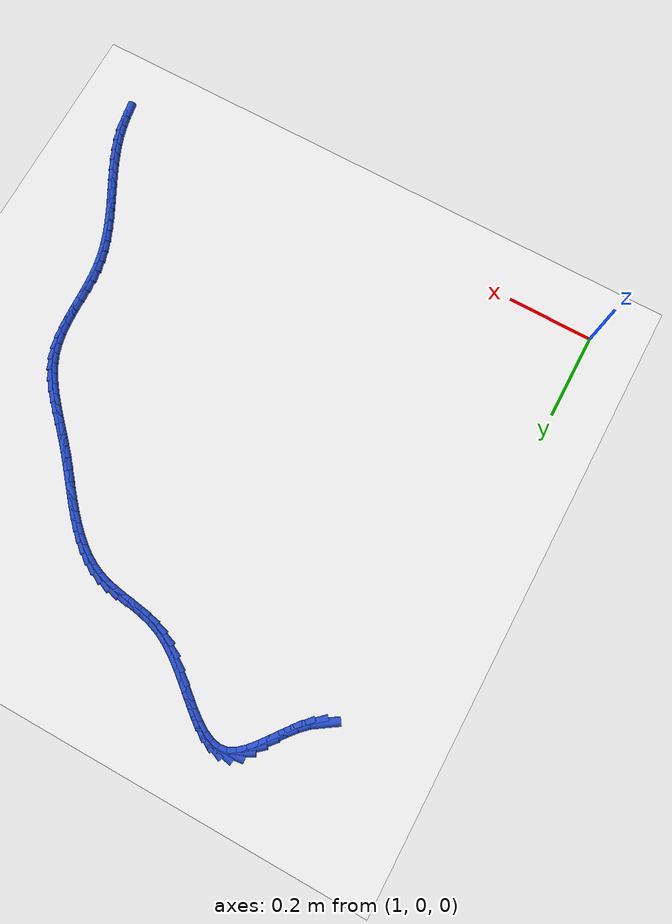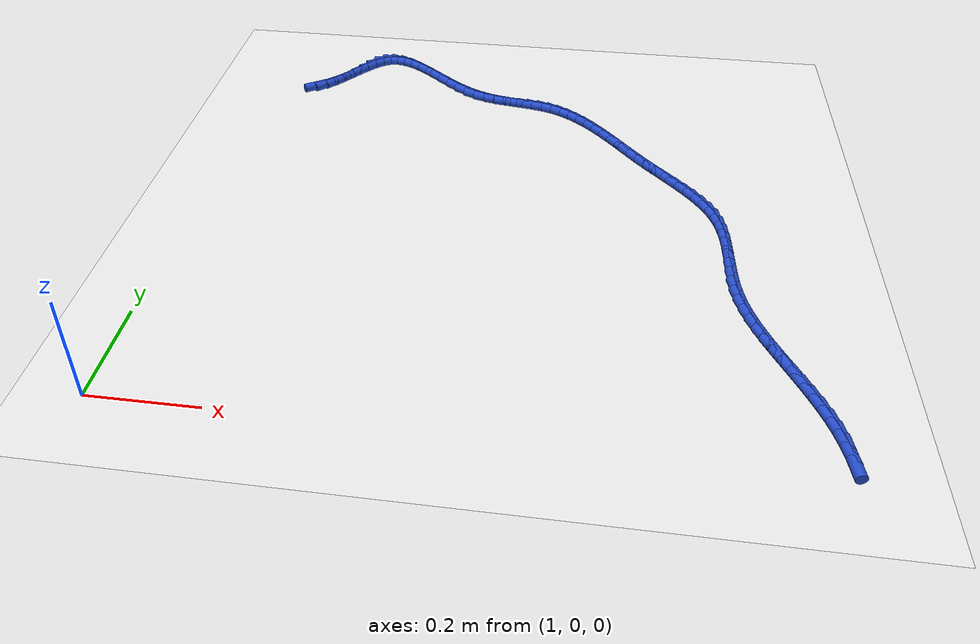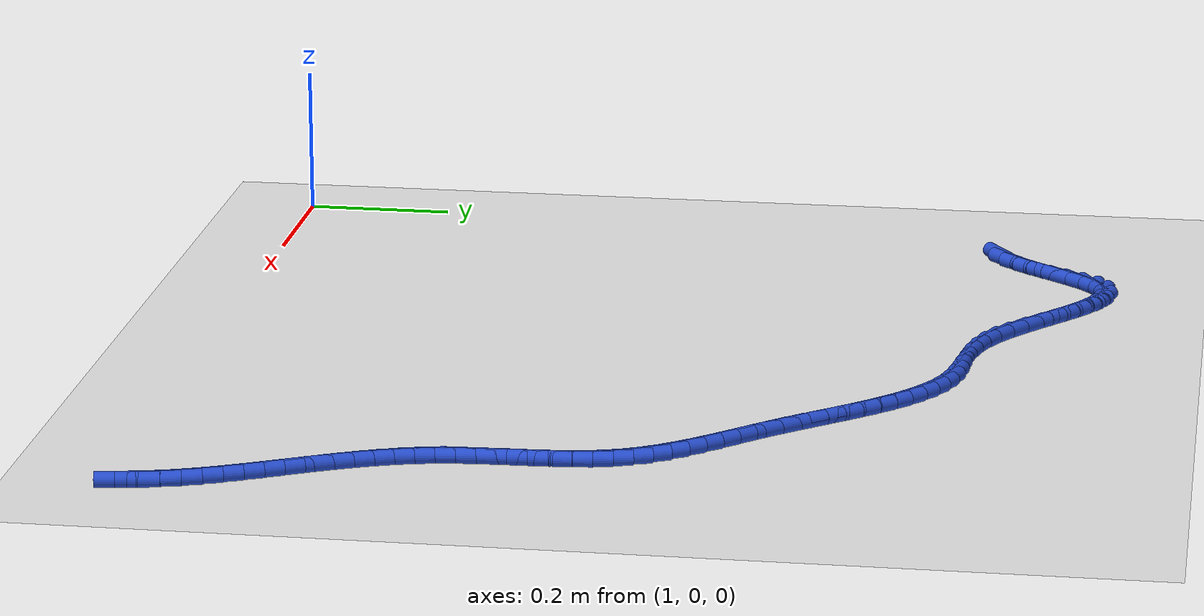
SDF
<sdf version="1.6">
 <world name="default">
  <model name="ground_plane">
   <static>1</static>
   <link name="link">
    <collision name="collision">
     <geometry><plane><normal>0 0 1</normal><size>100 100</size></plane></geometry>
     <surface><friction><ode><mu>100</mu><mu2>50</mu2></ode></friction></surface>
    </collision>
    <visual name="visual">
     <cast_shadows>0</cast_shadows>
     <geometry><plane><normal>0 0 1</normal><size>100 100</size></plane></geometry>
     <material>
      <script><uri>file://media/materials/scripts/gazebo.material</uri><name>Gazebo/WhiteGlow</name></script>
     </material>
    </visual>
   </link>
  </model>
  <model name="line">
   <link name="link_71">
    <pose>1.137002148626677 1.0160487825676845 0.01 0 1.57 0.5913728985003605</pose>
    <collision name="collision">
     <geometry><cylinder><radius>0.01</radius><length>0.08</length></cylinder></geometry>
    </collision>
    <visual name="visual">
     <material>
      <script><name>Gazebo/Blue</name><uri>file://media/materials/scripts/gazebo.material</uri></script>
     </material>
     <geometry><cylinder><radius>0.01</radius><length>0.08</length></cylinder></geometry>
    </visual>
   </link>
   <link name="link_72">
    <pose>1.1565941167604836 1.0292056874970004 0.01 0 1.57 0.7714647295257325</pose>
    <collision name="collision">
     <geometry><cylinder><radius>0.01</radius><length>0.08</length></cylinder></geometry>
    </collision>
    <visual name="visual">
     <material>
      <script><name>Gazebo/Blue</name><uri>file://media/materials/scripts/gazebo.material</uri></script>
     </material>
     <geometry><cylinder><radius>0.01</radius><length>0.08</length></cylinder></geometry>
    </visual>
   </link>
   <link name="link_73">
    <pose>1.175164277795667 1.047265435091484 0.01 0 1.57 0.8710166556853384</pose>
    <collision name="collision">
     <geometry><cylinder><radius>0.01</radius><length>0.08</length></cylinder></geometry>
    </collision>
    <visual name="visual">
     <material>
      <script><name>Gazebo/Blue</name><uri>file://media/materials/scripts/gazebo.material</uri></script>
     </material>
     <geometry><cylinder><radius>0.01</radius><length>0.08</length></cylinder></geometry>
    </visual>
   </link>
   <link name="link_74">
    <pose>1.1929773649842972 1.068423336660694 0.01 0 1.57 0.9136900970543028</pose>
    <collision name="collision">
     <geometry><cylinder><radius>0.01</radius><length>0.08</length></cylinder></geometry>
    </collision>
    <visual name="visual">
     <material>
      <script><name>Gazebo/Blue</name><uri>file://media/materials/scripts/gazebo.material</uri></script>
     </material>
     <geometry><cylinder><radius>0.01</radius><length>0.08</length></cylinder></geometry>
    </visual>
   </link>
   <link name="link_75">
    <pose>1.2102981115784477 1.09087470351419 0.01 0 1.57 0.9089419365113233</pose>
    <collision name="collision">
     <geometry><cylinder><radius>0.01</radius><length>0.08</length></cylinder></geometry>
    </collision>
    <visual name="visual">
     <material>
      <script><name>Gazebo/Blue</name><uri>file://media/materials/scripts/gazebo.material</uri></script>
     </material>
     <geometry><cylinder><radius>0.01</radius><length>0.08</length></cylinder></geometry>
    </visual>
   </link>
   <link name="link_76">
    <pose>1.2273912508301894 1.1128148469615307 0.01 0 1.57 0.8531490330658222</pose>
    <collision name="collision">
     <geometry><cylinder><radius>0.01</radius><length>0.08</length></cylinder></geometry>
    </collision>
    <visual name="visual">
     <material>
      <script><name>Gazebo/Blue</name><uri>file://media/materials/scripts/gazebo.material</uri></script>
     </material>
     <geometry><cylinder><radius>0.01</radius><length>0.08</length></cylinder></geometry>
    </visual>
   </link>
   <link name="link_77">
    <pose>1.2445215159915946 1.1324390783122757 0.01 0 1.57 0.7269117447156377</pose>
    <collision name="collision">
     <geometry><cylinder><radius>0.01</radius><length>0.08</length></cylinder></geometry>
    </collision>
    <visual name="visual">
     <material>
      <script><name>Gazebo/Blue</name><uri>file://media/materials/scripts/gazebo.material</uri></script>
     </material>
     <geometry><cylinder><radius>0.01</radius><length>0.08</length></cylinder></geometry>
    </visual>
   </link>
   <link name="link_78">
    <pose>1.261953640314735 1.1479427088759844 0.01 0 1.57 0.489170335091466</pose>
    <collision name="collision">
     <geometry><cylinder><radius>0.01</radius><length>0.08</length></cylinder></geometry>
    </collision>
    <visual name="visual">
     <material>
      <script><name>Gazebo/Blue</name><uri>file://media/materials/scripts/gazebo.material</uri></script>
     </material>
     <geometry><cylinder><radius>0.01</radius><length>0.08</length></cylinder></geometry>
    </visual>
   </link>
   <link name="link_79">
    <pose>1.279952081242337 1.1575236913404596 0.01 0 1.57 0.13872911382044562</pose>
    <collision name="collision">
     <geometry><cylinder><radius>0.01</radius><length>0.08</length></cylinder></geometry>
    </collision>
    <visual name="visual">
     <material>
      <script><name>Gazebo/Blue</name><uri>file://media/materials/scripts/gazebo.material</uri></script>
     </material>
     <geometry><cylinder><radius>0.01</radius><length>0.08</length></cylinder></geometry>
    </visual>
   </link>
   <link name="link_80">
    <pose>1.2987017650354922 1.160141634721758 0.01 0 1.57 -0.1813208368152568</pose>
    <collision name="collision">
     <geometry><cylinder><radius>0.01</radius><length>0.08</length></cylinder></geometry>
    </collision>
    <visual name="visual">
     <material>
      <script><name>Gazebo/Blue</name><uri>file://media/materials/scripts/gazebo.material</uri></script>
     </material>
     <geometry><cylinder><radius>0.01</radius><length>0.08</length></cylinder></geometry>
    </visual>
   </link>
   <link name="link_81">
    <pose>1.3181985091532409 1.156567210223683 0.01 0 1.57 -0.40783194671714057</pose>
    <collision name="collision">
     <geometry><cylinder><radius>0.01</radius><length>0.08</length></cylinder></geometry>
    </collision>
    <visual name="visual">
     <material>
      <script><name>Gazebo/Blue</name><uri>file://media/materials/scripts/gazebo.material</uri></script>
     </material>
     <geometry><cylinder><radius>0.01</radius><length>0.08</length></cylinder></geometry>
    </visual>
   </link>
   <link name="link_82">
    <pose>1.338410632201323 1.1478344407972103 0.01 0 1.57 -0.5515898923646361</pose>
    <collision name="collision">
     <geometry><cylinder><radius>0.01</radius><length>0.08</length></cylinder></geometry>
    </collision>
    <visual name="visual">
     <material>
      <script><name>Gazebo/Blue</name><uri>file://media/materials/scripts/gazebo.material</uri></script>
     </material>
     <geometry><cylinder><radius>0.01</radius><length>0.08</length></cylinder></geometry>
    </visual>
   </link>
   <link name="link_83">
    <pose>1.3593064527854755 1.1349773493933133 0.01 0 1.57 -0.6371300389751188</pose>
    <collision name="collision">
     <geometry><cylinder><radius>0.01</radius><length>0.08</length></cylinder></geometry>
    </collision>
    <visual name="visual">
     <material>
      <script><name>Gazebo/Blue</name><uri>file://media/materials/scripts/gazebo.material</uri></script>
     </material>
     <geometry><cylinder><radius>0.01</radius><length>0.08</length></cylinder></geometry>
    </visual>
   </link>
   <link name="link_84">
    <pose>1.3808542895114364 1.1190299589629673 0.01 0 1.57 -0.6820998795930007</pose>
    <collision name="collision">
     <geometry><cylinder><radius>0.01</radius><length>0.08</length></cylinder></geometry>
    </collision>
    <visual name="visual">
     <material>
      <script><name>Gazebo/Blue</name><uri>file://media/materials/scripts/gazebo.material</uri></script>
     </material>
     <geometry><cylinder><radius>0.01</radius><length>0.08</length></cylinder></geometry>
    </visual>
   </link>
   <link name="link_85">
    <pose>1.4030224609849444 1.1010262924571457 0.01 0 1.57 -0.6963413860198712</pose>
    <collision name="collision">
     <geometry><cylinder><radius>0.01</radius><length>0.08</length></cylinder></geometry>
    </collision>
    <visual name="visual">
     <material>
      <script><name>Gazebo/Blue</name><uri>file://media/materials/scripts/gazebo.material</uri></script>
     </material>
     <geometry><cylinder><radius>0.01</radius><length>0.08</length></cylinder></geometry>
    </visual>
   </link>
   <link name="link_86">
    <pose>1.4257792858117375 1.082000372826823 0.01 0 1.57 -0.6841660044927991</pose>
    <collision name="collision">
     <geometry><cylinder><radius>0.01</radius><length>0.08</length></cylinder></geometry>
    </collision>
    <visual name="visual">
     <material>
      <script><name>Gazebo/Blue</name><uri>file://media/materials/scripts/gazebo.material</uri></script>
     </material>
     <geometry><cylinder><radius>0.01</radius><length>0.08</length></cylinder></geometry>
    </visual>
   </link>
   <link name="link_87">
    <pose>1.449093082597554 1.0629862230229736 0.01 0 1.57 -0.6458872938954713</pose>
    <collision name="collision">
     <geometry><cylinder><radius>0.01</radius><length>0.08</length></cylinder></geometry>
    </collision>
    <visual name="visual">
     <material>
      <script><name>Gazebo/Blue</name><uri>file://media/materials/scripts/gazebo.material</uri></script>
     </material>
     <geometry><cylinder><radius>0.01</radius><length>0.08</length></cylinder></geometry>
    </visual>
   </link>
   <link name="link_88">
    <pose>1.4729321699481317 1.045017865996572 0.01 0 1.57 -0.5784608506104372</pose>
    <collision name="collision">
     <geometry><cylinder><radius>0.01</radius><length>0.08</length></cylinder></geometry>
    </collision>
    <visual name="visual">
     <material>
      <script><name>Gazebo/Blue</name><uri>file://media/materials/scripts/gazebo.material</uri></script>
     </material>
     <geometry><cylinder><radius>0.01</radius><length>0.08</length></cylinder></geometry>
    </visual>
   </link>
   <link name="link_89">
    <pose>1.497264866469209 1.0291293246985926 0.01 0 1.57 -0.4758443204005628</pose>
    <collision name="collision">
     <geometry><cylinder><radius>0.01</radius><length>0.08</length></cylinder></geometry>
    </collision>
    <visual name="visual">
     <material>
      <script><name>Gazebo/Blue</name><uri>file://media/materials/scripts/gazebo.material</uri></script>
     </material>
     <geometry><cylinder><radius>0.01</radius><length>0.08</length></cylinder></geometry>
    </visual>
   </link>
   <link name="link_90">
    <pose>1.5220592031511089 1.0163518062760322 0.01 0 1.57 -0.3506851265806094</pose>
    <collision name="collision">
     <geometry><cylinder><radius>0.01</radius><length>0.08</length></cylinder></geometry>
    </collision>
    <visual name="visual">
     <material>
      <script><name>Gazebo/Blue</name><uri>file://media/materials/scripts/gazebo.material</uri></script>
     </material>
     <geometry><cylinder><radius>0.01</radius><length>0.08</length></cylinder></geometry>
    </visual>
   </link>
   <link name="link_91">
    <pose>1.547224941599173 1.0071460506555572 0.01 0 1.57 -0.24883078111123785</pose>
    <collision name="collision">
     <geometry><cylinder><radius>0.01</radius><length>0.08</length></cylinder></geometry>
    </collision>
    <visual name="visual">
     <material>
      <script><name>Gazebo/Blue</name><uri>file://media/materials/scripts/gazebo.material</uri></script>
     </material>
     <geometry><cylinder><radius>0.01</radius><length>0.08</length></cylinder></geometry>
    </visual>
   </link>
   <link name="link_92">
    <pose>1.5725431407054535 1.0007127762428112 0.01 0 1.57 -0.18140707153791136</pose>
    <collision name="collision">
     <geometry><cylinder><radius>0.01</radius><length>0.08</length></cylinder></geometry>
    </collision>
    <visual name="visual">
     <material>
      <script><name>Gazebo/Blue</name><uri>file://media/materials/scripts/gazebo.material</uri></script>
     </material>
     <geometry><cylinder><radius>0.01</radius><length>0.08</length></cylinder></geometry>
    </visual>
   </link>
   <link name="link_93">
    <pose>1.5977776453584158 0.9960841734114088 0.01 0 1.57 -0.15103026229388786</pose>
    <collision name="collision">
     <geometry><cylinder><radius>0.01</radius><length>0.08</length></cylinder></geometry>
    </collision>
    <visual name="visual">
     <material>
      <script><name>Gazebo/Blue</name><uri>file://media/materials/scripts/gazebo.material</uri></script>
     </material>
     <geometry><cylinder><radius>0.01</radius><length>0.08</length></cylinder></geometry>
    </visual>
   </link>
   <link name="link_94">
    <pose>1.6226923004465241 0.9922924325349637 0.01 0 1.57 -0.15966799688558586</pose>
    <collision name="collision">
     <geometry><cylinder><radius>0.01</radius><length>0.08</length></cylinder></geometry>
    </collision>
    <visual name="visual">
     <material>
      <script><name>Gazebo/Blue</name><uri>file://media/materials/scripts/gazebo.material</uri></script>
     </material>
     <geometry><cylinder><radius>0.01</radius><length>0.08</length></cylinder></geometry>
    </visual>
   </link>
   <link name="link_95">
    <pose>1.6470509508582432 0.9883697439870913 0.01 0 1.57 -0.20993612916218832</pose>
    <collision name="collision">
     <geometry><cylinder><radius>0.01</radius><length>0.08</length></cylinder></geometry>
    </collision>
    <visual name="visual">
     <material>
      <script><name>Gazebo/Blue</name><uri>file://media/materials/scripts/gazebo.material</uri></script>
     </material>
     <geometry><cylinder><radius>0.01</radius><length>0.08</length></cylinder></geometry>
    </visual>
   </link>
   <link name="link_96">
    <pose>1.6706174414820365 0.9833482981414052 0.01 0 1.57 -0.3044229538754298</pose>
    <collision name="collision">
     <geometry><cylinder><radius>0.01</radius><length>0.08</length></cylinder></geometry>
    </collision>
    <visual name="visual">
     <material>
      <script><name>Gazebo/Blue</name><uri>file://media/materials/scripts/gazebo.material</uri></script>
     </material>
     <geometry><cylinder><radius>0.01</radius><length>0.08</length></cylinder></geometry>
    </visual>
   </link>
   <link name="link_97">
    <pose>1.6931574690371498 0.9762664671165922 0.01 0 1.57 -0.4238414345881973</pose>
    <collision name="collision">
     <geometry><cylinder><radius>0.01</radius><length>0.08</length></cylinder></geometry>
    </collision>
    <visual name="visual">
     <material>
      <script><name>Gazebo/Blue</name><uri>file://media/materials/scripts/gazebo.material</uri></script>
     </material>
     <geometry><cylinder><radius>0.01</radius><length>0.08</length></cylinder></geometry>
    </visual>
   </link>
   <link name="link_98">
    <pose>1.7145694427645692 0.9666056413596813 0.01 0 1.57 -0.5326641164342392</pose>
    <collision name="collision">
     <geometry><cylinder><radius>0.01</radius><length>0.08</length></cylinder></geometry>
    </collision>
    <visual name="visual">
     <material>
      <script><name>Gazebo/Blue</name><uri>file://media/materials/scripts/gazebo.material</uri></script>
     </material>
     <geometry><cylinder><radius>0.01</radius><length>0.08</length></cylinder></geometry>
    </visual>
   </link>
   <link name="link_99">
    <pose>1.7349709649168643 0.9545789171153467 0.01 0 1.57 -0.6257067629695859</pose>
    <collision name="collision">
     <geometry><cylinder><radius>0.01</radius><length>0.08</length></cylinder></geometry>
    </collision>
    <visual name="visual">
     <material>
      <script><name>Gazebo/Blue</name><uri>file://media/materials/scripts/gazebo.material</uri></script>
     </material>
     <geometry><cylinder><radius>0.01</radius><length>0.08</length></cylinder></geometry>
    </visual>
   </link>
   <link name="link_100">
    <pose>1.7545001627403085 0.9404679067583172 0.01 0 1.57 -0.702573788124187</pose>
    <collision name="collision">
     <geometry><cylinder><radius>0.01</radius><length>0.08</length></cylinder></geometry>
    </collision>
    <visual name="visual">
     <material>
      <script><name>Gazebo/Blue</name><uri>file://media/materials/scripts/gazebo.material</uri></script>
     </material>
     <geometry><cylinder><radius>0.01</radius><length>0.08</length></cylinder></geometry>
    </visual>
   </link>
   <link name="link_101">
    <pose>1.7732951634811742 0.9245542226633215 0.01 0 1.57 -0.7639558536630183</pose>
    <collision name="collision">
     <geometry><cylinder><radius>0.01</radius><length>0.08</length></cylinder></geometry>
    </collision>
    <visual name="visual">
     <material>
      <script><name>Gazebo/Blue</name><uri>file://media/materials/scripts/gazebo.material</uri></script>
     </material>
     <geometry><cylinder><radius>0.01</radius><length>0.08</length></cylinder></geometry>
    </visual>
   </link>
   <link name="link_102">
    <pose>1.7914940943857336 0.907119477205088 0.01 0 1.57 -0.811019397514967</pose>
    <collision name="collision">
     <geometry><cylinder><radius>0.01</radius><length>0.08</length></cylinder></geometry>
    </collision>
    <visual name="visual">
     <material>
      <script><name>Gazebo/Blue</name><uri>file://media/materials/scripts/gazebo.material</uri></script>
     </material>
     <geometry><cylinder><radius>0.01</radius><length>0.08</length></cylinder></geometry>
    </visual>
   </link>
   <link name="link_103">
    <pose>1.80923508270026 0.8884452827583457 0.01 0 1.57 -0.8449946291841909</pose>
    <collision name="collision">
     <geometry><cylinder><radius>0.01</radius><length>0.08</length></cylinder></geometry>
    </collision>
    <visual name="visual">
     <material>
      <script><name>Gazebo/Blue</name><uri>file://media/materials/scripts/gazebo.material</uri></script>
     </material>
     <geometry><cylinder><radius>0.01</radius><length>0.08</length></cylinder></geometry>
    </visual>
   </link>
   <link name="link_104">
    <pose>1.826656255671026 0.8688132516978224 0.01 0 1.57 -0.8669467407259794</pose>
    <collision name="collision">
     <geometry><cylinder><radius>0.01</radius><length>0.08</length></cylinder></geometry>
    </collision>
    <visual name="visual">
     <material>
      <script><name>Gazebo/Blue</name><uri>file://media/materials/scripts/gazebo.material</uri></script>
     </material>
     <geometry><cylinder><radius>0.01</radius><length>0.08</length></cylinder></geometry>
    </visual>
   </link>
   <link name="link_105">
    <pose>1.8438957405443044 0.8485049963982481 0.01 0 1.57 -0.8776698323023392</pose>
    <collision name="collision">
     <geometry><cylinder><radius>0.01</radius><length>0.08</length></cylinder></geometry>
    </collision>
    <visual name="visual">
     <material>
      <script><name>Gazebo/Blue</name><uri>file://media/materials/scripts/gazebo.material</uri></script>
     </material>
     <geometry><cylinder><radius>0.01</radius><length>0.08</length></cylinder></geometry>
    </visual>
   </link>
   <link name="link_106">
    <pose>1.8610916645663678 0.8278021292343505 0.01 0 1.57 -0.8776496958210064</pose>
    <collision name="collision">
     <geometry><cylinder><radius>0.01</radius><length>0.08</length></cylinder></geometry>
    </collision>
    <visual name="visual">
     <material>
      <script><name>Gazebo/Blue</name><uri>file://media/materials/scripts/gazebo.material</uri></script>
     </material>
     <geometry><cylinder><radius>0.01</radius><length>0.08</length></cylinder></geometry>
    </visual>
   </link>
   <link name="link_107">
    <pose>1.878382154983489 0.8069862625808586 0.01 0 1.57 -0.8670614114376577</pose>
    <collision name="collision">
     <geometry><cylinder><radius>0.01</radius><length>0.08</length></cylinder></geometry>
    </collision>
    <visual name="visual">
     <material>
      <script><name>Gazebo/Blue</name><uri>file://media/materials/scripts/gazebo.material</uri></script>
     </material>
     <geometry><cylinder><radius>0.01</radius><length>0.08</length></cylinder></geometry>
    </visual>
   </link>
   <link name="link_108">
    <pose>1.8959053390419405 0.7863390088125006 0.01 0 1.57 -0.8462076487174274</pose>
    <collision name="collision">
     <geometry><cylinder><radius>0.01</radius><length>0.08</length></cylinder></geometry>
    </collision>
    <visual name="visual">
     <material>
      <script><name>Gazebo/Blue</name><uri>file://media/materials/scripts/gazebo.material</uri></script>
     </material>
     <geometry><cylinder><radius>0.01</radius><length>0.08</length></cylinder></geometry>
    </visual>
   </link>
   <link name="link_109">
    <pose>1.9137911228761029 0.766134089668669 0.01 0 1.57 -0.8265583350207791</pose>
    <collision name="collision">
     <geometry><cylinder><radius>0.01</radius><length>0.08</length></cylinder></geometry>
    </collision>
    <visual name="visual">
     <material>
      <script><name>Gazebo/Blue</name><uri>file://media/materials/scripts/gazebo.material</uri></script>
     </material>
     <geometry><cylinder><radius>0.01</radius><length>0.08</length></cylinder></geometry>
    </visual>
   </link>
   <link name="link_110">
    <pose>1.9319405387560882 0.7464255534158131 0.01 0 1.57 -0.8211715179133987</pose>
    <collision name="collision">
     <geometry><cylinder><radius>0.01</radius><length>0.08</length></cylinder></geometry>
    </collision>
    <visual name="visual">
     <material>
      <script><name>Gazebo/Blue</name><uri>file://media/materials/scripts/gazebo.material</uri></script>
     </material>
     <geometry><cylinder><radius>0.01</radius><length>0.08</length></cylinder></geometry>
    </visual>
   </link>
   <link name="link_111">
    <pose>1.9500011808414526 0.7270241980475695 0.01 0 1.57 -0.8311542694628763</pose>
    <collision name="collision">
     <geometry><cylinder><radius>0.01</radius><length>0.08</length></cylinder></geometry>
    </collision>
    <visual name="visual">
     <material>
      <script><name>Gazebo/Blue</name><uri>file://media/materials/scripts/gazebo.material</uri></script>
     </material>
     <geometry><cylinder><radius>0.01</radius><length>0.08</length></cylinder></geometry>
    </visual>
   </link>
   <link name="link_112">
    <pose>1.9676074933182222 0.7077282001935618 0.01 0 1.57 -0.857305934752279</pose>
    <collision name="collision">
     <geometry><cylinder><radius>0.01</radius><length>0.08</length></cylinder></geometry>
    </collision>
    <visual name="visual">
     <material>
      <script><name>Gazebo/Blue</name><uri>file://media/materials/scripts/gazebo.material</uri></script>
     </material>
     <geometry><cylinder><radius>0.01</radius><length>0.08</length></cylinder></geometry>
    </visual>
   </link>
   <link name="link_113">
    <pose>1.9843939203724241 0.6883357364834133 0.01 0 1.57 -0.9007681027601252</pose>
    <collision name="collision">
     <geometry><cylinder><radius>0.01</radius><length>0.08</length></cylinder></geometry>
    </collision>
    <visual name="visual">
     <material>
      <script><name>Gazebo/Blue</name><uri>file://media/materials/scripts/gazebo.material</uri></script>
     </material>
     <geometry><cylinder><radius>0.01</radius><length>0.08</length></cylinder></geometry>
    </visual>
   </link>
   <link name="link_114">
    <pose>1.999994906190085 0.6686449835467485 0.01 0 1.57 -0.962855191771858</pose>
    <collision name="collision">
     <geometry><cylinder><radius>0.01</radius><length>0.08</length></cylinder></geometry>
    </collision>
    <visual name="visual">
     <material>
      <script><name>Gazebo/Blue</name><uri>file://media/materials/scripts/gazebo.material</uri></script>
     </material>
     <geometry><cylinder><radius>0.01</radius><length>0.08</length></cylinder></geometry>
    </visual>
   </link>
   <link name="link_115">
    <pose>2.014044894957232 0.6484541180131908 0.01 0 1.57 -1.0446536029911497</pose>
    <collision name="collision">
     <geometry><cylinder><radius>0.01</radius><length>0.08</length></cylinder></geometry>
    </collision>
    <visual name="visual">
     <material>
      <script><name>Gazebo/Blue</name><uri>file://media/materials/scripts/gazebo.material</uri></script>
     </material>
     <geometry><cylinder><radius>0.01</radius><length>0.08</length></cylinder></geometry>
    </visual>
   </link>
   <link name="link_116">
    <pose>2.026178330859893 0.6275613165123641 0.01 0 1.57 -1.1463078079212456</pose>
    <collision name="collision">
     <geometry><cylinder><radius>0.01</radius><length>0.08</length></cylinder></geometry>
    </collision>
    <visual name="visual">
     <material>
      <script><name>Gazebo/Blue</name><uri>file://media/materials/scripts/gazebo.material</uri></script>
     </material>
     <geometry><cylinder><radius>0.01</radius><length>0.08</length></cylinder></geometry>
    </visual>
   </link>
   <link name="link_117">
    <pose>2.0360296580840953 0.6057647556738922 0.01 0 1.57 -1.262843275997455</pose>
    <collision name="collision">
     <geometry><cylinder><radius>0.01</radius><length>0.08</length></cylinder></geometry>
    </collision>
    <visual name="visual">
     <material>
      <script><name>Gazebo/Blue</name><uri>file://media/materials/scripts/gazebo.material</uri></script>
     </material>
     <geometry><cylinder><radius>0.01</radius><length>0.08</length></cylinder></geometry>
    </visual>
   </link>
   <link name="link_118">
    <pose>2.0433040990063813 0.5828943331231586 0.01 0 1.57 -1.3659702804959133</pose>
    <collision name="collision">
     <geometry><cylinder><radius>0.01</radius><length>0.08</length></cylinder></geometry>
    </collision>
    <visual name="visual">
     <material>
      <script><name>Gazebo/Blue</name><uri>file://media/materials/scripts/gazebo.material</uri></script>
     </material>
     <geometry><cylinder><radius>0.01</radius><length>0.08</length></cylinder></geometry>
    </visual>
   </link>
   <link name="link_119">
    <pose>2.0482619286487016 0.5590287070498215 0.01 0 1.57 -1.443239159641035</pose>
    <collision name="collision">
     <geometry><cylinder><radius>0.01</radius><length>0.08</length></cylinder></geometry>
    </collision>
    <visual name="visual">
     <material>
      <script><name>Gazebo/Blue</name><uri>file://media/materials/scripts/gazebo.material</uri></script>
     </material>
     <geometry><cylinder><radius>0.01</radius><length>0.08</length></cylinder></geometry>
    </visual>
   </link>
   <link name="link_120">
    <pose>2.0514252778929345 0.5343638928204011 0.01 0 1.57 -1.496035049208647</pose>
    <collision name="collision">
     <geometry><cylinder><radius>0.01</radius><length>0.08</length></cylinder></geometry>
    </collision>
    <visual name="visual">
     <material>
      <script><name>Gazebo/Blue</name><uri>file://media/materials/scripts/gazebo.material</uri></script>
     </material>
     <geometry><cylinder><radius>0.01</radius><length>0.08</length></cylinder></geometry>
    </visual>
   </link>
   <link name="link_121">
    <pose>2.053317820467895 0.5090965972664121 0.01 0 1.57 -1.5262106752654234</pose>
    <collision name="collision">
     <geometry><cylinder><radius>0.01</radius><length>0.08</length></cylinder></geometry>
    </collision>
    <visual name="visual">
     <material>
      <script><name>Gazebo/Blue</name><uri>file://media/materials/scripts/gazebo.material</uri></script>
     </material>
     <geometry><cylinder><radius>0.01</radius><length>0.08</length></cylinder></geometry>
    </visual>
   </link>
   <link name="link_122">
    <pose>2.054463230102398 0.4834235272193689 0.01 0 1.57 -1.5351902734306337</pose>
    <collision name="collision">
     <geometry><cylinder><radius>0.01</radius><length>0.08</length></cylinder></geometry>
    </collision>
    <visual name="visual">
     <material>
      <script><name>Gazebo/Blue</name><uri>file://media/materials/scripts/gazebo.material</uri></script>
     </material>
     <geometry><cylinder><radius>0.01</radius><length>0.08</length></cylinder></geometry>
    </visual>
   </link>
   <link name="link_123">
    <pose>2.055385180525259 0.45754138951078704 0.01 0 1.57 -1.5236334657131945</pose>
    <collision name="collision">
     <geometry><cylinder><radius>0.01</radius><length>0.08</length></cylinder></geometry>
    </collision>
    <visual name="visual">
     <material>
      <script><name>Gazebo/Blue</name><uri>file://media/materials/scripts/gazebo.material</uri></script>
     </material>
     <geometry><cylinder><radius>0.01</radius><length>0.08</length></cylinder></geometry>
    </visual>
   </link>
   <link name="link_124">
    <pose>2.0566073454652924 0.4316468909721811 0.01 0 1.57 -1.491382167170405</pose>
    <collision name="collision">
     <geometry><cylinder><radius>0.01</radius><length>0.08</length></cylinder></geometry>
    </collision>
    <visual name="visual">
     <material>
      <script><name>Gazebo/Blue</name><uri>file://media/materials/scripts/gazebo.material</uri></script>
     </material>
     <geometry><cylinder><radius>0.01</radius><length>0.08</length></cylinder></geometry>
    </visual>
   </link>
   <link name="link_125">
    <pose>2.0586533986513134 0.4059367384350659 0.01 0 1.57 -1.4376086091429712</pose>
    <collision name="collision">
     <geometry><cylinder><radius>0.01</radius><length>0.08</length></cylinder></geometry>
    </collision>
    <visual name="visual">
     <material>
      <script><name>Gazebo/Blue</name><uri>file://media/materials/scripts/gazebo.material</uri></script>
     </material>
     <geometry><cylinder><radius>0.01</radius><length>0.08</length></cylinder></geometry>
    </visual>
   </link>
   <link name="link_126">
    <pose>2.0620470138121365 0.38060763873095577 0.01 0 1.57 -1.3645356359609895</pose>
    <collision name="collision">
     <geometry><cylinder><radius>0.01</radius><length>0.08</length></cylinder></geometry>
    </collision>
    <visual name="visual">
     <material>
      <script><name>Gazebo/Blue</name><uri>file://media/materials/scripts/gazebo.material</uri></script>
     </material>
     <geometry><cylinder><radius>0.01</radius><length>0.08</length></cylinder></geometry>
    </visual>
   </link>
   <link name="link_127">
    <pose>2.0672317677550596 0.35582822620655435 0.01 0 1.57 -1.2931696262551926</pose>
    <collision name="collision">
     <geometry><cylinder><radius>0.01</radius><length>0.08</length></cylinder></geometry>
    </collision>
    <visual name="visual">
     <material>
      <script><name>Gazebo/Blue</name><uri>file://media/materials/scripts/gazebo.material</uri></script>
     </material>
     <geometry><cylinder><radius>0.01</radius><length>0.08</length></cylinder></geometry>
    </visual>
   </link>
   <link name="link_128">
    <pose>2.0741399257021307 0.3315879299852025 0.01 0 1.57 -1.2326601439543874</pose>
    <collision name="collision">
     <geometry><cylinder><radius>0.01</radius><length>0.08</length></cylinder></geometry>
    </collision>
    <visual name="visual">
     <material>
      <script><name>Gazebo/Blue</name><uri>file://media/materials/scripts/gazebo.material</uri></script>
     </material>
     <geometry><cylinder><radius>0.01</radius><length>0.08</length></cylinder></geometry>
    </visual>
   </link>
   <link name="link_129">
    <pose>2.082502729566929 0.3078057242505643 0.01 0 1.57 -1.183454767859113</pose>
    <collision name="collision">
     <geometry><cylinder><radius>0.01</radius><length>0.08</length></cylinder></geometry>
    </collision>
    <visual name="visual">
     <material>
      <script><name>Gazebo/Blue</name><uri>file://media/materials/scripts/gazebo.material</uri></script>
     </material>
     <geometry><cylinder><radius>0.01</radius><length>0.08</length></cylinder></geometry>
    </visual>
   </link>
   <link name="link_130">
    <pose>2.092050941236642 0.2844004149459604 0.01 0 1.57 -1.1456037432772601</pose>
    <collision name="collision">
     <geometry><cylinder><radius>0.01</radius><length>0.08</length></cylinder></geometry>
    </collision>
    <visual name="visual">
     <material>
      <script><name>Gazebo/Blue</name><uri>file://media/materials/scripts/gazebo.material</uri></script>
     </material>
     <geometry><cylinder><radius>0.01</radius><length>0.08</length></cylinder></geometry>
    </visual>
   </link>
   <link name="link_131">
    <pose>2.1025153225984563 0.26129080801471055 0.01 0 1.57 -1.1189663554102325</pose>
    <collision name="collision">
     <geometry><cylinder><radius>0.01</radius><length>0.08</length></cylinder></geometry>
    </collision>
    <visual name="visual">
     <material>
      <script><name>Gazebo/Blue</name><uri>file://media/materials/scripts/gazebo.material</uri></script>
     </material>
     <geometry><cylinder><radius>0.01</radius><length>0.08</length></cylinder></geometry>
    </visual>
   </link>
   <link name="link_132">
    <pose>2.1136266355395583 0.2383957094001359 0.01 0 1.57 -1.1033560909326108</pose>
    <collision name="collision">
     <geometry><cylinder><radius>0.01</radius><length>0.08</length></cylinder></geometry>
    </collision>
    <visual name="visual">
     <material>
      <script><name>Gazebo/Blue</name><uri>file://media/materials/scripts/gazebo.material</uri></script>
     </material>
     <geometry><cylinder><radius>0.01</radius><length>0.08</length></cylinder></geometry>
    </visual>
   </link>
   <link name="link_133">
    <pose>2.125115641947136 0.21563392504555617 0.01 0 1.57 -1.0986381079411942</pose>
    <collision name="collision">
     <geometry><cylinder><radius>0.01</radius><length>0.08</length></cylinder></geometry>
    </collision>
    <visual name="visual">
     <material>
      <script><name>Gazebo/Blue</name><uri>file://media/materials/scripts/gazebo.material</uri></script>
     </material>
     <geometry><cylinder><radius>0.01</radius><length>0.08</length></cylinder></geometry>
    </visual>
   </link>
   <link name="link_134">
    <pose>2.1367131037083733 0.1929242608942917 0.01 0 1.57 -1.104783405536262</pose>
    <collision name="collision">
     <geometry><cylinder><radius>0.01</radius><length>0.08</length></cylinder></geometry>
    </collision>
    <visual name="visual">
     <material>
      <script><name>Gazebo/Blue</name><uri>file://media/materials/scripts/gazebo.material</uri></script>
     </material>
     <geometry><cylinder><radius>0.01</radius><length>0.08</length></cylinder></geometry>
    </visual>
   </link>
   <link name="link_135">
    <pose>2.1481497827104605 0.17018552288966257 0.01 0 1.57 -1.121885231735759</pose>
    <collision name="collision">
     <geometry><cylinder><radius>0.01</radius><length>0.08</length></cylinder></geometry>
    </collision>
    <visual name="visual">
     <material>
      <script><name>Gazebo/Blue</name><uri>file://media/materials/scripts/gazebo.material</uri></script>
     </material>
     <geometry><cylinder><radius>0.01</radius><length>0.08</length></cylinder></geometry>
    </visual>
   </link>
   <link name="link_136">
    <pose>2.1591564408405826 0.1473365169749897 0.01 0 1.57 -1.150139436261033</pose>
    <collision name="collision">
     <geometry><cylinder><radius>0.01</radius><length>0.08</length></cylinder></geometry>
    </collision>
    <visual name="visual">
     <material>
      <script><name>Gazebo/Blue</name><uri>file://media/materials/scripts/gazebo.material</uri></script>
     </material>
     <geometry><cylinder><radius>0.01</radius><length>0.08</length></cylinder></geometry>
    </visual>
   </link>
   <link name="link_137">
    <pose>2.169463839985926 0.12429604909359301 0.01 0 1.57 -1.1897852122133008</pose>
    <collision name="collision">
     <geometry><cylinder><radius>0.01</radius><length>0.08</length></cylinder></geometry>
    </collision>
    <visual name="visual">
     <material>
      <script><name>Gazebo/Blue</name><uri>file://media/materials/scripts/gazebo.material</uri></script>
     </material>
     <geometry><cylinder><radius>0.01</radius><length>0.08</length></cylinder></geometry>
    </visual>
   </link>
   <link name="link_138">
    <pose>2.178802742033679 0.10098292518879284 0.01 0 1.57 -1.2409990469767105</pose>
    <collision name="collision">
     <geometry><cylinder><radius>0.01</radius><length>0.08</length></cylinder></geometry>
    </collision>
    <visual name="visual">
     <material>
      <script><name>Gazebo/Blue</name><uri>file://media/materials/scripts/gazebo.material</uri></script>
     </material>
     <geometry><cylinder><radius>0.01</radius><length>0.08</length></cylinder></geometry>
    </visual>
   </link>
   <link name="link_139">
    <pose>2.1869039088710265 0.07731595120390938 0.01 0 1.57 -1.3013847664711846</pose>
    <collision name="collision">
     <geometry><cylinder><radius>0.01</radius><length>0.08</length></cylinder></geometry>
    </collision>
    <visual name="visual">
     <material>
      <script><name>Gazebo/Blue</name><uri>file://media/materials/scripts/gazebo.material</uri></script>
     </material>
     <geometry><cylinder><radius>0.01</radius><length>0.08</length></cylinder></geometry>
    </visual>
   </link>
   <link name="link_140">
    <pose>2.1935529416079973 0.05323613483881869 0.01 0 1.57 -1.3612491532788498</pose>
    <collision name="collision">
     <geometry><cylinder><radius>0.01</radius><length>0.08</length></cylinder></geometry>
    </collision>
    <visual name="visual">
     <material>
      <script><name>Gazebo/Blue</name><uri>file://media/materials/scripts/gazebo.material</uri></script>
     </material>
     <geometry><cylinder><radius>0.01</radius><length>0.08</length></cylinder></geometry>
    </visual>
   </link>
   <link name="link_141">
    <pose>2.1987553821537857 0.028773527215731558 0.01 0 1.57 -1.4180599271973773</pose>
    <collision name="collision">
     <geometry><cylinder><radius>0.01</radius><length>0.08</length></cylinder></geometry>
    </collision>
    <visual name="visual">
     <material>
      <script><name>Gazebo/Blue</name><uri>file://media/materials/scripts/gazebo.material</uri></script>
     </material>
     <geometry><cylinder><radius>0.01</radius><length>0.08</length></cylinder></geometry>
    </visual>
   </link>
  </model>
 </world>
</sdf>
